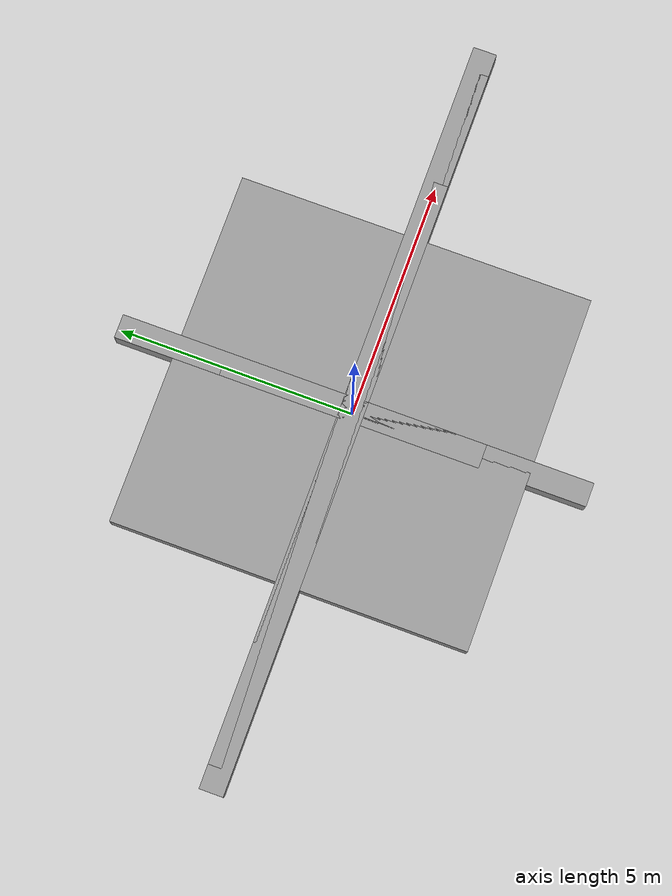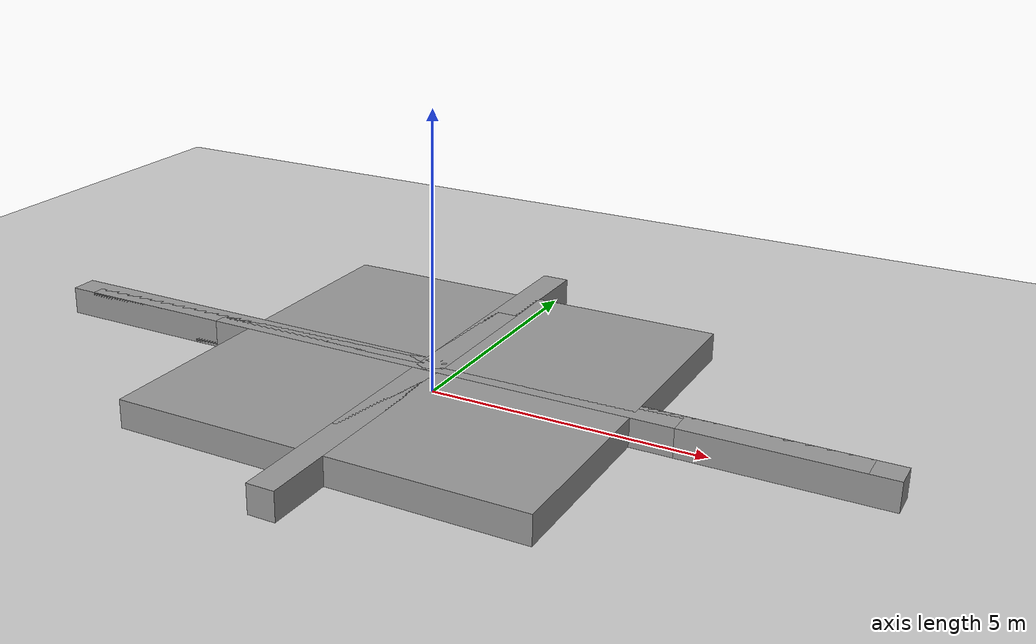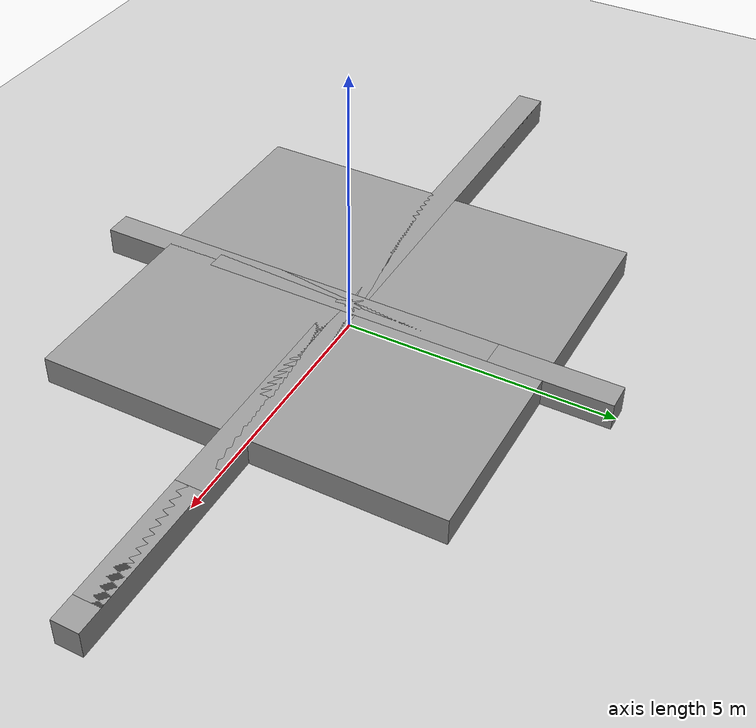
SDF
<sdf version="1.4">
 <world name="default">
  <light name="sun" type="directional">
   <pose>0 0 10 0 -0 0</pose>
   <diffuse>0.8 0.8 0.8 1</diffuse>
   <specular>0.2 0.2 0.2 1</specular>
   <attenuation>
    <range>1000</range>
    <constant>0.9</constant>
    <linear>0.01</linear>
    <quadratic>0.001</quadratic>
   </attenuation>
   <direction>-0.5 0.1 -0.9</direction>
  </light>
  <model name="ground_plane">
   <static>1</static>
   <link name="link">
    <collision name="collision">
     <geometry><plane><normal>0 0 1</normal><size>100 100</size></plane></geometry>
     <surface><friction><ode><mu>100</mu><mu2>50</mu2></ode></friction></surface>
    </collision>
    <visual name="visual">
     <cast_shadows>0</cast_shadows>
     <geometry><plane><normal>0 0 1</normal><size>100 100</size></plane></geometry>
     <material>
      <script><uri>file://media/materials/scripts/gazebo.material</uri><name>Gazebo/Grey</name></script>
     </material>
    </visual>
    <velocity_decay><linear>0</linear><angular>0</angular></velocity_decay>
   </link>
  </model>
  <physics type="ode">
   <max_step_size>0.001</max_step_size>
   <real_time_factor>1</real_time_factor>
   <real_time_update_rate>1000</real_time_update_rate>
   <gravity>0 0 -9.8</gravity>
  </physics>
  <scene><ambient>0.4 0.4 0.4 1</ambient><background>0.7 0.7 0.7 1</background><shadows>1</shadows></scene>
  <spherical_coordinates>
   <surface_model>EARTH_WGS84</surface_model>
   <latitude_deg>0</latitude_deg>
   <longitude_deg>0</longitude_deg>
   <elevation>0</elevation>
   <heading_deg>0</heading_deg>
  </spherical_coordinates>
  <model name="left_wall_1">
   <link name="link">
    <inertial>
     <mass>1</mass>
     <inertia><ixx>1</ixx><ixy>0</ixy><ixz>0</ixz><iyy>1</iyy><iyz>0</iyz><izz>1</izz></inertia>
    </inertial>
    <collision name="collision"><geometry><box><size>0.5 10 1</size></box></geometry></collision>
    <visual name="visual">
     <geometry><box><size>0.5 10 1</size></box></geometry>
     <material>
      <script><uri>file://media/materials/scripts/gazebo.material</uri><name>Gazebo/Grey</name></script>
     </material>
    </visual>
    <velocity_decay><linear>0</linear><angular>0</angular></velocity_decay>
   </link>
   <static>1</static>
  </model>
  <model name="left_wall_2">
   <link name="link">
    <inertial>
     <mass>1</mass>
     <inertia><ixx>1</ixx><ixy>0</ixy><ixz>0</ixz><iyy>1</iyy><iyz>0</iyz><izz>1</izz></inertia>
    </inertial>
    <collision name="collision"><geometry><box><size>5.5 0.5 1</size></box></geometry></collision>
    <visual name="visual">
     <geometry><box><size>5.5 0.5 1</size></box></geometry>
     <material>
      <script><uri>file://media/materials/scripts/gazebo.material</uri><name>Gazebo/Grey</name></script>
     </material>
    </visual>
    <velocity_decay><linear>0</linear><angular>0</angular></velocity_decay>
   </link>
   <static>1</static>
  </model>
  <model name="left_wall_3">
   <link name="link">
    <inertial>
     <mass>1</mass>
     <inertia><ixx>1</ixx><ixy>0</ixy><ixz>0</ixz><iyy>1</iyy><iyz>0</iyz><izz>1</izz></inertia>
    </inertial>
    <collision name="collision"><geometry><box><size>0.5 10 1</size></box></geometry></collision>
    <visual name="visual">
     <geometry><box><size>0.5 10 1</size></box></geometry>
     <material>
      <script><uri>file://media/materials/scripts/gazebo.material</uri><name>Gazebo/Grey</name></script>
     </material>
    </visual>
    <velocity_decay><linear>0</linear><angular>0</angular></velocity_decay>
   </link>
   <static>1</static>
  </model>
  <model name="right_wall_1">
   <link name="link">
    <inertial>
     <mass>1</mass>
     <inertia><ixx>1</ixx><ixy>0</ixy><ixz>0</ixz><iyy>1</iyy><iyz>0</iyz><izz>1</izz></inertia>
    </inertial>
    <collision name="collision"><geometry><box><size>0.5 10 1</size></box></geometry></collision>
    <visual name="visual">
     <geometry><box><size>0.5 10 1</size></box></geometry>
     <material>
      <script><uri>file://media/materials/scripts/gazebo.material</uri><name>Gazebo/Grey</name></script>
     </material>
    </visual>
    <velocity_decay><linear>0</linear><angular>0</angular></velocity_decay>
   </link>
   <static>1</static>
  </model>
  <model name="right_wall_2">
   <link name="link">
    <inertial>
     <mass>1</mass>
     <inertia><ixx>1</ixx><ixy>0</ixy><ixz>0</ixz><iyy>1</iyy><iyz>0</iyz><izz>1</izz></inertia>
    </inertial>
    <collision name="collision"><geometry><box><size>5.5 0.5 1</size></box></geometry></collision>
    <visual name="visual">
     <geometry><box><size>5.5 0.5 1</size></box></geometry>
     <material>
      <script><uri>file://media/materials/scripts/gazebo.material</uri><name>Gazebo/Grey</name></script>
     </material>
    </visual>
    <velocity_decay><linear>0</linear><angular>0</angular></velocity_decay>
   </link>
   <static>1</static>
  </model>
  <model name="right_wall_3">
   <link name="link">
    <inertial>
     <mass>1</mass>
     <inertia><ixx>1</ixx><ixy>0</ixy><ixz>0</ixz><iyy>1</iyy><iyz>0</iyz><izz>1</izz></inertia>
    </inertial>
    <collision name="collision"><geometry><box><size>0.5 10 1</size></box></geometry></collision>
    <visual name="visual">
     <geometry><box><size>0.5 10 1</size></box></geometry>
     <material>
      <script><uri>file://media/materials/scripts/gazebo.material</uri><name>Gazebo/Grey</name></script>
     </material>
    </visual>
    <velocity_decay><linear>0</linear><angular>0</angular></velocity_decay>
   </link>
   <static>1</static>
  </model>
  <model name="top_wall_1">
   <link name="link">
    <inertial>
     <mass>1</mass>
     <inertia><ixx>1</ixx><ixy>0</ixy><ixz>0</ixz><iyy>1</iyy><iyz>0</iyz><izz>1</izz></inertia>
    </inertial>
    <collision name="collision"><geometry><box><size>16 0.5 1</size></box></geometry></collision>
    <visual name="visual">
     <geometry><box><size>16 0.5 1</size></box></geometry>
     <material>
      <script><uri>file://media/materials/scripts/gazebo.material</uri><name>Gazebo/Grey</name></script>
     </material>
    </visual>
    <velocity_decay><linear>0</linear><angular>0</angular></velocity_decay>
   </link>
   <static>1</static>
  </model>
  <model name="top_wall_2">
   <link name="link">
    <inertial>
     <mass>1</mass>
     <inertia><ixx>1</ixx><ixy>0</ixy><ixz>0</ixz><iyy>1</iyy><iyz>0</iyz><izz>1</izz></inertia>
    </inertial>
    <collision name="collision"><geometry><box><size>0.5 5.5 1</size></box></geometry></collision>
    <visual name="visual">
     <geometry><box><size>0.5 5.5 1</size></box></geometry>
     <material>
      <script><uri>file://media/materials/scripts/gazebo.material</uri><name>Gazebo/Grey</name></script>
     </material>
    </visual>
    <velocity_decay><linear>0</linear><angular>0</angular></velocity_decay>
   </link>
   <static>1</static>
  </model>
  <model name="top_wall_3">
   <link name="link">
    <inertial>
     <mass>1</mass>
     <inertia><ixx>1</ixx><ixy>0</ixy><ixz>0</ixz><iyy>1</iyy><iyz>0</iyz><izz>1</izz></inertia>
    </inertial>
    <collision name="collision"><geometry><box><size>9 0.5 1</size></box></geometry></collision>
    <visual name="visual">
     <geometry><box><size>9 0.5 1</size></box></geometry>
     <material>
      <script><uri>file://media/materials/scripts/gazebo.material</uri><name>Gazebo/Grey</name></script>
     </material>
    </visual>
    <velocity_decay><linear>0</linear><angular>0</angular></velocity_decay>
   </link>
   <static>1</static>
  </model>
  <model name="bottom_wall_1">
   <link name="link">
    <inertial>
     <mass>1</mass>
     <inertia><ixx>1</ixx><ixy>0</ixy><ixz>0</ixz><iyy>1</iyy><iyz>0</iyz><izz>1</izz></inertia>
    </inertial>
    <collision name="collision"><geometry><box><size>15 0.5 1</size></box></geometry></collision>
    <visual name="visual">
     <geometry><box><size>15 0.5 1</size></box></geometry>
     <material>
      <script><uri>file://media/materials/scripts/gazebo.material</uri><name>Gazebo/Grey</name></script>
     </material>
    </visual>
    <velocity_decay><linear>0</linear><angular>0</angular></velocity_decay>
   </link>
   <static>1</static>
  </model>
  <model name="bottom_wall_2">
   <link name="link">
    <inertial>
     <mass>1</mass>
     <inertia><ixx>1</ixx><ixy>0</ixy><ixz>0</ixz><iyy>1</iyy><iyz>0</iyz><izz>1</izz></inertia>
    </inertial>
    <collision name="collision"><geometry><box><size>0.5 5.5 1</size></box></geometry></collision>
    <visual name="visual">
     <geometry><box><size>0.5 5.5 1</size></box></geometry>
     <material>
      <script><uri>file://media/materials/scripts/gazebo.material</uri><name>Gazebo/Grey</name></script>
     </material>
    </visual>
    <velocity_decay><linear>0</linear><angular>0</angular></velocity_decay>
   </link>
   <static>1</static>
  </model>
  <model name="bottom_wall_3">
   <link name="link">
    <inertial>
     <mass>1</mass>
     <inertia><ixx>1</ixx><ixy>0</ixy><ixz>0</ixz><iyy>1</iyy><iyz>0</iyz><izz>1</izz></inertia>
    </inertial>
    <collision name="collision"><geometry><box><size>10 0.5 1</size></box></geometry></collision>
    <visual name="visual">
     <geometry><box><size>10 0.5 1</size></box></geometry>
     <material>
      <script><uri>file://media/materials/scripts/gazebo.material</uri><name>Gazebo/Grey</name></script>
     </material>
    </visual>
    <velocity_decay><linear>0</linear><angular>0</angular></velocity_decay>
   </link>
   <static>1</static>
  </model>
  <model name="left_basket">
   <link name="link">
    <inertial>
     <mass>1</mass>
     <inertia><ixx>1</ixx><ixy>0</ixy><ixz>0</ixz><iyy>1</iyy><iyz>0</iyz><izz>1</izz></inertia>
    </inertial>
    <collision name="collision">
     <geometry><cylinder><radius>0.25</radius><length>1</length></cylinder></geometry>
    </collision>
    <visual name="visual">
     <geometry><cylinder><radius>0.25</radius><length>1</length></cylinder></geometry>
     <material>
      <script><uri>file://media/materials/scripts/gazebo.material</uri><name>Gazebo/Grey</name></script>
     </material>
    </visual>
    <velocity_decay><linear>0</linear><angular>0</angular></velocity_decay>
   </link>
   <static>1</static>
  </model>
  <model name="right_basket">
   <link name="link">
    <inertial>
     <mass>1</mass>
     <inertia><ixx>1</ixx><ixy>0</ixy><ixz>0</ixz><iyy>1</iyy><iyz>0</iyz><izz>1</izz></inertia>
    </inertial>
    <collision name="collision">
     <geometry><cylinder><radius>0.25</radius><length>1</length></cylinder></geometry>
    </collision>
    <visual name="visual">
     <geometry><cylinder><radius>0.25</radius><length>1</length></cylinder></geometry>
     <material>
      <script><uri>file://media/materials/scripts/gazebo.material</uri><name>Gazebo/Grey</name></script>
     </material>
    </visual>
    <velocity_decay><linear>0</linear><angular>0</angular></velocity_decay>
   </link>
   <static>1</static>
  </model>
  <model name="top_basket">
   <link name="link">
    <inertial>
     <mass>1</mass>
     <inertia><ixx>1</ixx><ixy>0</ixy><ixz>0</ixz><iyy>1</iyy><iyz>0</iyz><izz>1</izz></inertia>
    </inertial>
    <collision name="collision">
     <geometry><cylinder><radius>0.25</radius><length>1</length></cylinder></geometry>
    </collision>
    <visual name="visual">
     <geometry><cylinder><radius>0.25</radius><length>1</length></cylinder></geometry>
     <material>
      <script><uri>file://media/materials/scripts/gazebo.material</uri><name>Gazebo/Grey</name></script>
     </material>
    </visual>
    <velocity_decay><linear>0</linear><angular>0</angular></velocity_decay>
   </link>
   <static>1</static>
  </model>
  <model name="bottom_basket">
   <link name="link">
    <inertial>
     <mass>1</mass>
     <inertia><ixx>1</ixx><ixy>0</ixy><ixz>0</ixz><iyy>1</iyy><iyz>0</iyz><izz>1</izz></inertia>
    </inertial>
    <collision name="collision">
     <geometry><cylinder><radius>0.25</radius><length>1</length></cylinder></geometry>
    </collision>
    <visual name="visual">
     <geometry><cylinder><radius>0.25</radius><length>1</length></cylinder></geometry>
     <material>
      <script><uri>file://media/materials/scripts/gazebo.material</uri><name>Gazebo/Grey</name></script>
     </material>
    </visual>
    <velocity_decay><linear>0</linear><angular>0</angular></velocity_decay>
   </link>
   <static>1</static>
  </model>
  <model name="center_block">
   <link name="link">
    <inertial>
     <mass>1</mass>
     <inertia><ixx>1</ixx><ixy>0</ixy><ixz>0</ixz><iyy>1</iyy><iyz>0</iyz><izz>1</izz></inertia>
    </inertial>
    <collision name="collision"><geometry><box><size>7.5 7.5 1</size></box></geometry></collision>
    <visual name="visual">
     <geometry><box><size>7.5 7.5 1</size></box></geometry>
     <material>
      <script><uri>file://media/materials/scripts/gazebo.material</uri><name>Gazebo/Grey</name></script>
     </material>
    </visual>
    <velocity_decay><linear>0</linear><angular>0</angular></velocity_decay>
   </link>
   <static>1</static>
  </model>
 </world>
</sdf>
